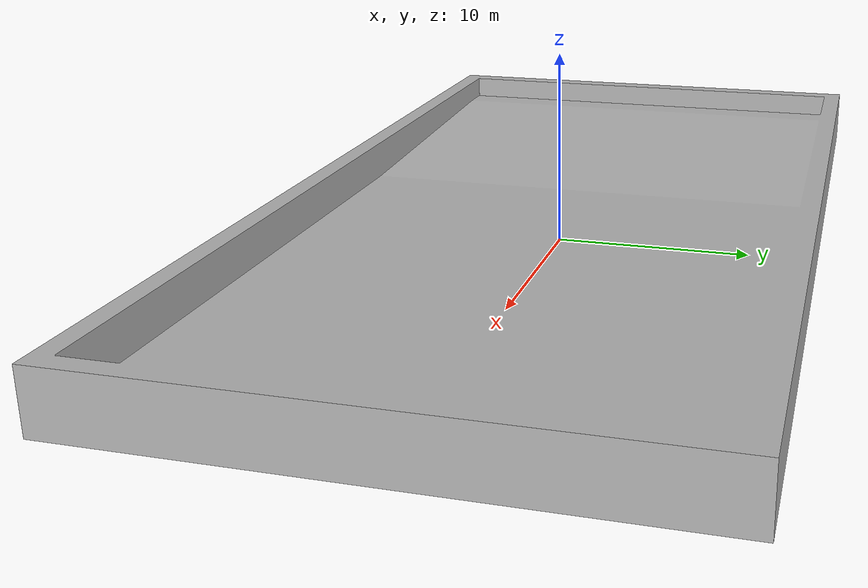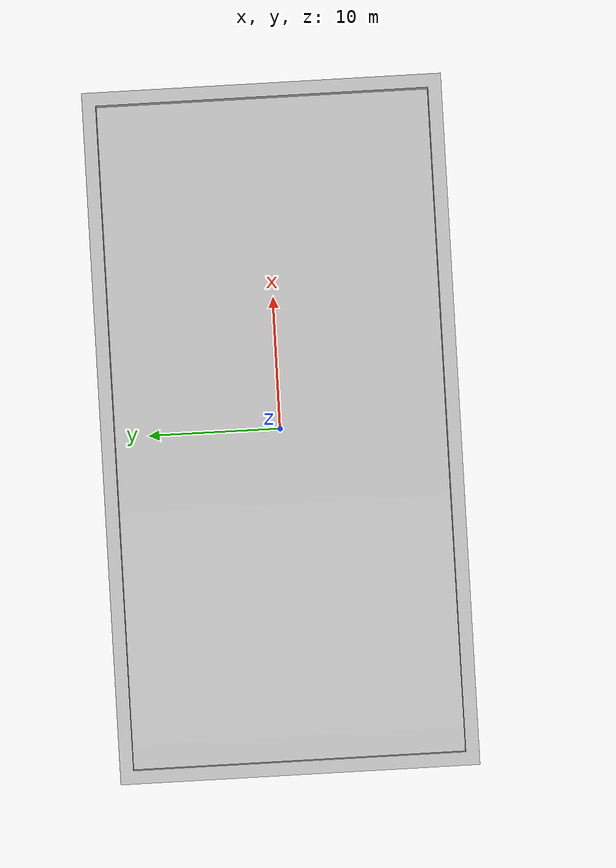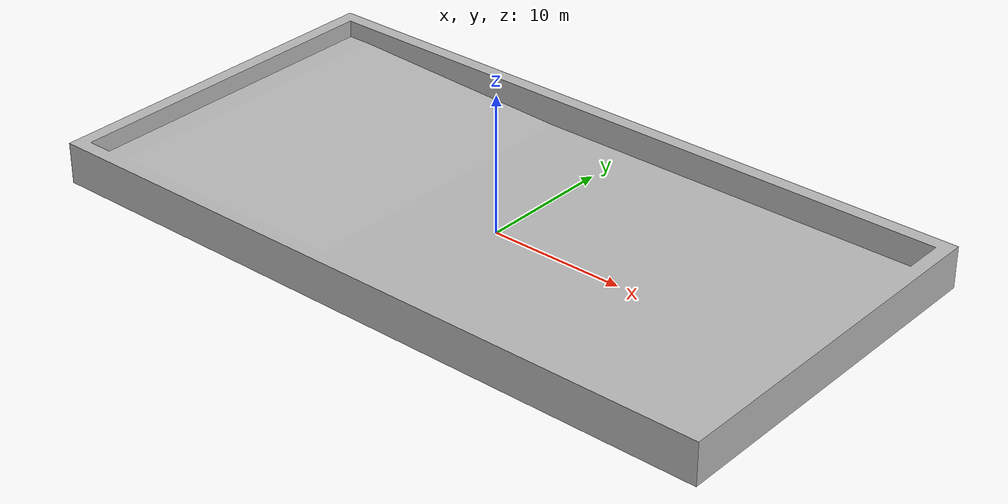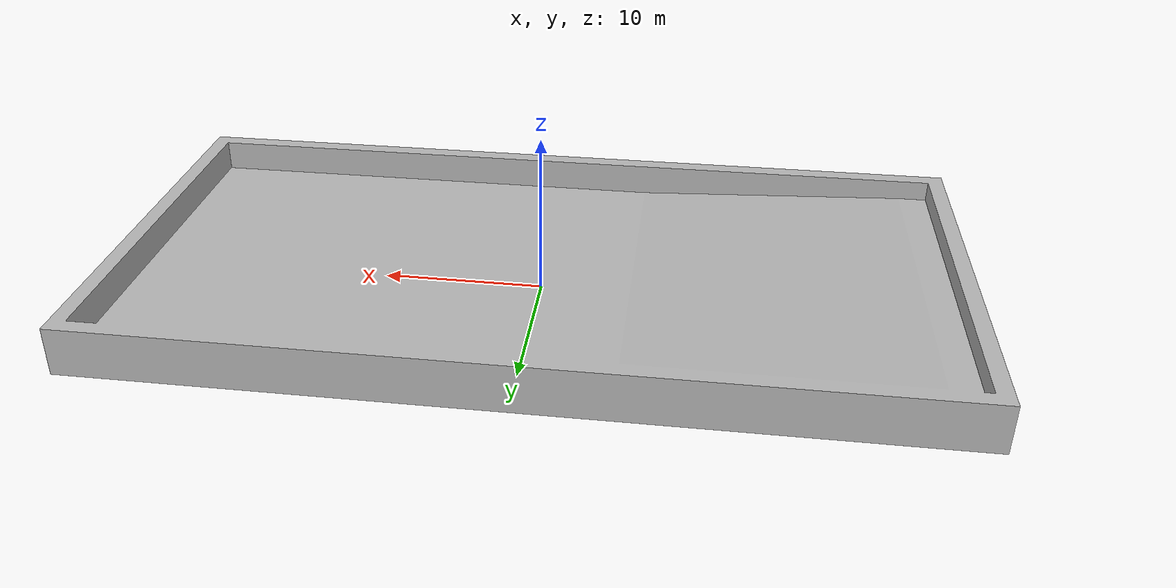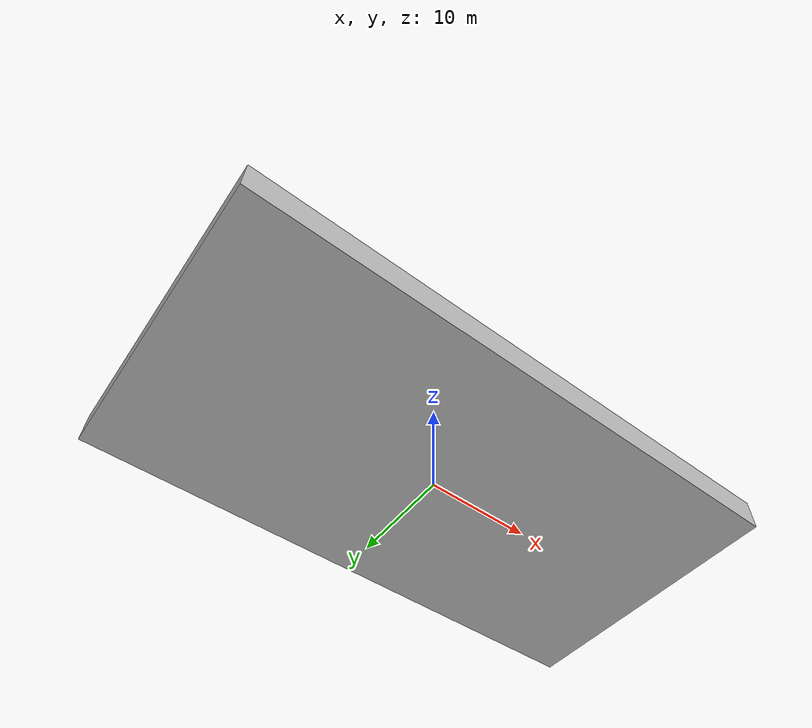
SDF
<?xml version='1.0'?>
<sdf version='1.7'>
  <model name='pool'>
    <link name='Base_link'>
      <inertial>
        <pose>-0 0 0.75567 0 -0 0</pose>
        <mass>1.2379e+07</mass>
        <inertia>
          <ixx>9.3556e+08</ixx>
          <ixy>-5.1e-07</ixy>
          <ixz>2.8051e-08</ixz>
          <iyy>3.1435e+09</iyy>
          <iyz>6.3008e-08</iyz>
          <izz>4.0668e+09</izz>
        </inertia>
      </inertial>
      <self_collide>0</self_collide>
      <enable_wind>0</enable_wind>
      <kinematic>0</kinematic>
      <pose>0 0 0 0 -0 0</pose>
      <visual name='Base_link_visual'>
        <pose>0 0 0 0 -0 0</pose>
        <geometry>
          <mesh>
            <scale>1 1 1</scale>
            <uri>meshes/pool_final.DAE</uri>
          </mesh>
        </geometry>
        <transparency>0</transparency>
        <cast_shadows>1</cast_shadows>
      </visual>
      <collision name='Base_link_collision'>
        <laser_retro>0</laser_retro>
        <max_contacts>10</max_contacts>
        <pose>0 0 0 0 -0 0</pose>
        <geometry>
          <mesh>
            <uri>meshes/pool_final.DAE</uri>
            <scale>1 1 1</scale>
          </mesh>
        </geometry>
        <surface>
          <friction>
            <ode>
              <mu>1</mu>
              <mu2>1</mu2>
              <fdir1>0 0 0</fdir1>
              <slip1>0</slip1>
              <slip2>0</slip2>
            </ode>
            <torsional>
              <coefficient>1</coefficient>
              <patch_radius>0</patch_radius>
              <surface_radius>0</surface_radius>
              <use_patch_radius>1</use_patch_radius>
              <ode>
                <slip>0</slip>
              </ode>
            </torsional>
          </friction>
          <bounce>
            <restitution_coefficient>0</restitution_coefficient>
            <threshold>1e+06</threshold>
          </bounce>
          <contact>
            <collide_without_contact>0</collide_without_contact>
            <collide_without_contact_bitmask>1</collide_without_contact_bitmask>
            <collide_bitmask>1</collide_bitmask>
            <ode>
              <soft_cfm>0</soft_cfm>
              <soft_erp>0.2</soft_erp>
              <kp>1e+13</kp>
              <kd>1</kd>
              <max_vel>0.01</max_vel>
              <min_depth>0</min_depth>
            </ode>
            <bullet>
              <split_impulse>1</split_impulse>
              <split_impulse_penetration_threshold>-0.01</split_impulse_penetration_threshold>
              <soft_cfm>0</soft_cfm>
              <soft_erp>0.2</soft_erp>
              <kp>1e+13</kp>
              <kd>1</kd>
            </bullet>
          </contact>
        </surface>
      </collision>
    </link>
    <static>1</static>
    <allow_auto_disable>1</allow_auto_disable>
  </model>
</sdf>
